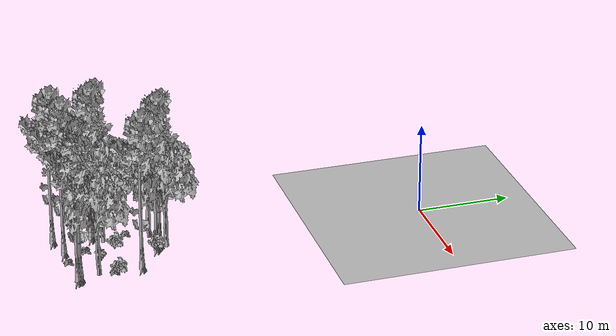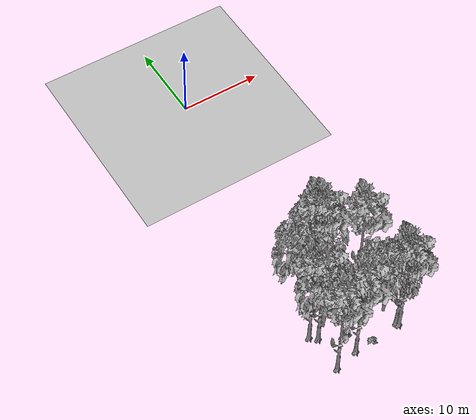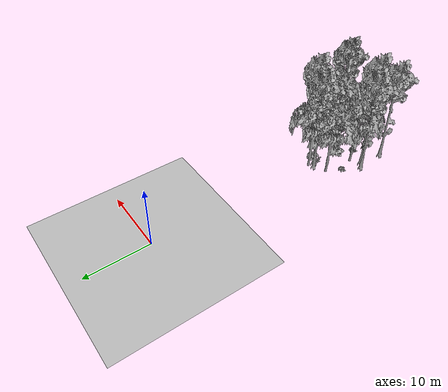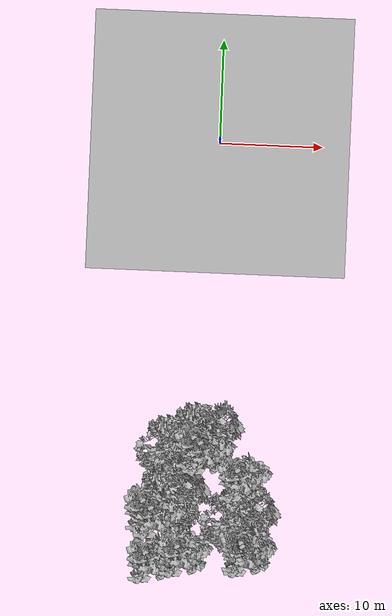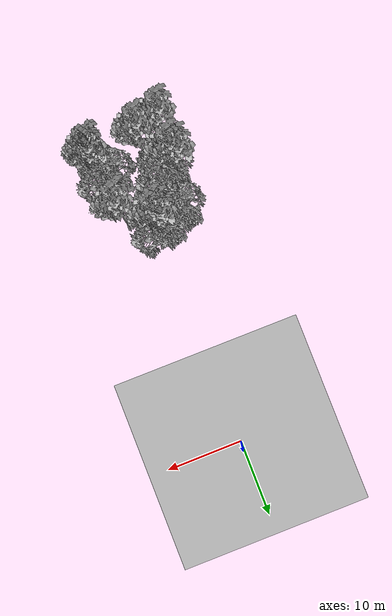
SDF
<sdf version="1.7">
 <world name="default">
  <model name="ground_plane">
   <static>1</static>
   <link name="link">
    <collision name="collision">
     <pose>-50 0 0 0 -0 0</pose>
     <geometry><plane><normal>0 0 1</normal><size>80 80</size></plane></geometry>
     <surface><contact><ode><min_depth>0.01</min_depth><max_vel>0</max_vel></ode></contact></surface>
    </collision>
    <visual name="grass">
     <cast_shadows>0</cast_shadows>
     <geometry>
      <mesh>
       <scale>0.46714285714285714 0.46714285714285714 0.1</scale>
       <uri>file://grass_plane/meshes/grass_plane.dae</uri>
      </mesh>
     </geometry>
    </visual>
   </link>
  </model>
  <model name="Tree 44">
   <static>1</static>
   <pose>-4.772963422962604 -38.736597356201614 0 1.57079 -0 0</pose>
   <link name="link">
    <collision name="collision">
     <geometry><mesh><scale>3.5 5 3.5</scale><uri>model://tree_9/meshes/tree_9.obj</uri></mesh></geometry>
    </collision>
    <visual name="visual">
     <geometry><mesh><scale>3.5 5 3.5</scale><uri>model://tree_9/meshes/tree_9.obj</uri></mesh></geometry>
    </visual>
   </link>
  </model>
  <model name="Tree 62">
   <static>1</static>
   <pose>-0.8476313191848774 -28.26942804555965 0 1.57079 -0 0</pose>
   <link name="link">
    <collision name="collision">
     <geometry><mesh><scale>3.5 5 3.5</scale><uri>model://tree_9/meshes/tree_9.obj</uri></mesh></geometry>
    </collision>
    <visual name="visual">
     <geometry><mesh><scale>3.5 5 3.5</scale><uri>model://tree_9/meshes/tree_9.obj</uri></mesh></geometry>
    </visual>
   </link>
  </model>
  <model name="Tree 96">
   <static>1</static>
   <pose>-1.9554758805430694 -38.091379323991816 0 1.57079 -0 0</pose>
   <link name="link">
    <collision name="collision">
     <geometry><mesh><scale>3.5 5 3.5</scale><uri>model://tree_9/meshes/tree_9.obj</uri></mesh></geometry>
    </collision>
    <visual name="visual">
     <geometry><mesh><scale>3.5 5 3.5</scale><uri>model://tree_9/meshes/tree_9.obj</uri></mesh></geometry>
    </visual>
   </link>
  </model>
  <model name="Tree 215">
   <static>1</static>
   <pose>-0.3521636685065914 -27.693443556598602 0 1.57079 -0 0</pose>
   <link name="link">
    <collision name="collision">
     <geometry><mesh><scale>3.5 5 3.5</scale><uri>model://tree_2/meshes/tree_2.obj</uri></mesh></geometry>
    </collision>
    <visual name="visual">
     <geometry><mesh><scale>3.5 5 3.5</scale><uri>model://tree_2/meshes/tree_2.obj</uri></mesh></geometry>
    </visual>
   </link>
  </model>
  <model name="Tree 253">
   <static>1</static>
   <pose>-4.458149948999932 -34.73825931731608 0 1.57079 -0 0</pose>
   <link name="link">
    <collision name="collision">
     <geometry><mesh><scale>3.5 5 3.5</scale><uri>model://tree_9/meshes/tree_9.obj</uri></mesh></geometry>
    </collision>
    <visual name="visual">
     <geometry><mesh><scale>3.5 5 3.5</scale><uri>model://tree_9/meshes/tree_9.obj</uri></mesh></geometry>
    </visual>
   </link>
  </model>
  <model name="Tree 272">
   <static>1</static>
   <pose>3.1922259605793357 -31.077012771134058 0 1.57079 -0 0</pose>
   <link name="link">
    <collision name="collision">
     <geometry><mesh><scale>3.5 5 3.5</scale><uri>model://tree_9/meshes/tree_9.obj</uri></mesh></geometry>
    </collision>
    <visual name="visual">
     <geometry><mesh><scale>3.5 5 3.5</scale><uri>model://tree_9/meshes/tree_9.obj</uri></mesh></geometry>
    </visual>
   </link>
  </model>
  <model name="Tree 316">
   <static>1</static>
   <pose>-2.8980222621096274 -28.948289363778905 0 1.57079 -0 0</pose>
   <link name="link">
    <collision name="collision">
     <geometry><mesh><scale>3.5 5 3.5</scale><uri>model://tree_2/meshes/tree_2.obj</uri></mesh></geometry>
    </collision>
    <visual name="visual">
     <geometry><mesh><scale>3.5 5 3.5</scale><uri>model://tree_2/meshes/tree_2.obj</uri></mesh></geometry>
    </visual>
   </link>
  </model>
  <model name="Tree 335">
   <static>1</static>
   <pose>3.374353226107374 -35.58121880385855 0 1.57079 -0 0</pose>
   <link name="link">
    <collision name="collision">
     <geometry><mesh><scale>3.5 5 3.5</scale><uri>model://tree_2/meshes/tree_2.obj</uri></mesh></geometry>
    </collision>
    <visual name="visual">
     <geometry><mesh><scale>3.5 5 3.5</scale><uri>model://tree_2/meshes/tree_2.obj</uri></mesh></geometry>
    </visual>
   </link>
  </model>
  <model name="Tree 342">
   <static>1</static>
   <pose>-0.2402337194348334 -28.743538428764943 0 1.57079 -0 0</pose>
   <link name="link">
    <collision name="collision">
     <geometry><mesh><scale>3.5 5 3.5</scale><uri>model://tree_9/meshes/tree_9.obj</uri></mesh></geometry>
    </collision>
    <visual name="visual">
     <geometry><mesh><scale>3.5 5 3.5</scale><uri>model://tree_9/meshes/tree_9.obj</uri></mesh></geometry>
    </visual>
   </link>
  </model>
  <model name="Tree 372">
   <static>1</static>
   <pose>-5.186914372528889 -34.09236948992682 0 1.57079 -0 0</pose>
   <link name="link">
    <collision name="collision">
     <geometry><mesh><scale>3.5 5 3.5</scale><uri>model://tree_9/meshes/tree_9.obj</uri></mesh></geometry>
    </collision>
    <visual name="visual">
     <geometry><mesh><scale>3.5 5 3.5</scale><uri>model://tree_9/meshes/tree_9.obj</uri></mesh></geometry>
    </visual>
   </link>
  </model>
  <model name="Tree 383">
   <static>1</static>
   <pose>-3.244000229568897 -33.752142597869025 0 1.57079 -0 0</pose>
   <link name="link">
    <collision name="collision">
     <geometry><mesh><scale>3.5 5 3.5</scale><uri>model://tree_2/meshes/tree_2.obj</uri></mesh></geometry>
    </collision>
    <visual name="visual">
     <geometry><mesh><scale>3.5 5 3.5</scale><uri>model://tree_2/meshes/tree_2.obj</uri></mesh></geometry>
    </visual>
   </link>
  </model>
  <model name="Tree 423">
   <static>1</static>
   <pose>3.8769606684919466 -37.84538817243067 0 1.57079 -0 0</pose>
   <link name="link">
    <collision name="collision">
     <geometry><mesh><scale>3.5 5 3.5</scale><uri>model://tree_9/meshes/tree_9.obj</uri></mesh></geometry>
    </collision>
    <visual name="visual">
     <geometry><mesh><scale>3.5 5 3.5</scale><uri>model://tree_9/meshes/tree_9.obj</uri></mesh></geometry>
    </visual>
   </link>
  </model>
  <model name="Tree 534">
   <static>1</static>
   <pose>3.7348005355685174 -37.52660534654092 0 1.57079 -0 0</pose>
   <link name="link">
    <collision name="collision">
     <geometry><mesh><scale>3.5 5 3.5</scale><uri>model://tree_9/meshes/tree_9.obj</uri></mesh></geometry>
    </collision>
    <visual name="visual">
     <geometry><mesh><scale>3.5 5 3.5</scale><uri>model://tree_9/meshes/tree_9.obj</uri></mesh></geometry>
    </visual>
   </link>
  </model>
  <model name="Bush 18">
   <static>1</static>
   <pose>3.944961482684768 -33.70527190269342 0 1.57079 -0 0</pose>
   <link name="link">
    <collision name="collision">
     <geometry><mesh><scale>2 2 2</scale><uri>model://bush_1/meshes/bush_1.obj</uri></mesh></geometry>
     <surface><contact><collide_without_contact>false</collide_without_contact></contact></surface>
    </collision>
    <visual name="visual">
     <geometry><mesh><scale>2 2 2</scale><uri>model://bush_1/meshes/bush_1.obj</uri></mesh></geometry>
    </visual>
   </link>
  </model>
  <model name="Bush 22">
   <static>1</static>
   <pose>-1.6343887799916175 -35.9119247758578 0 1.57079 -0 0</pose>
   <link name="link">
    <collision name="collision">
     <geometry><mesh><scale>2 2 2</scale><uri>model://bush_2/meshes/bush_2.obj</uri></mesh></geometry>
     <surface><contact><collide_without_contact>false</collide_without_contact></contact></surface>
    </collision>
    <visual name="visual">
     <geometry><mesh><scale>2 2 2</scale><uri>model://bush_2/meshes/bush_2.obj</uri></mesh></geometry>
    </visual>
   </link>
  </model>
  <model name="Bush 295">
   <static>1</static>
   <pose>-1.018102033541254 -28.512766474178086 0 1.57079 -0 0</pose>
   <link name="link">
    <collision name="collision">
     <geometry><mesh><scale>2 2 2</scale><uri>model://bush_5/meshes/bush_5.obj</uri></mesh></geometry>
     <surface><contact><collide_without_contact>false</collide_without_contact></contact></surface>
    </collision>
    <visual name="visual">
     <geometry><mesh><scale>2 2 2</scale><uri>model://bush_5/meshes/bush_5.obj</uri></mesh></geometry>
    </visual>
   </link>
  </model>
  <model name="Bush 375">
   <static>1</static>
   <pose>-1.3458685438573283 -32.9345987975399 0 1.57079 -0 0</pose>
   <link name="link">
    <collision name="collision">
     <geometry><mesh><scale>2 2 2</scale><uri>model://bush_1/meshes/bush_1.obj</uri></mesh></geometry>
     <surface><contact><collide_without_contact>false</collide_without_contact></contact></surface>
    </collision>
    <visual name="visual">
     <geometry><mesh><scale>2 2 2</scale><uri>model://bush_1/meshes/bush_1.obj</uri></mesh></geometry>
    </visual>
   </link>
  </model>
  <model name="Bush 411">
   <static>1</static>
   <pose>0.18697249106289604 -38.09593753907855 0 1.57079 -0 0</pose>
   <link name="link">
    <collision name="collision">
     <geometry><mesh><scale>2 2 2</scale><uri>model://bush_2/meshes/bush_2.obj</uri></mesh></geometry>
     <surface><contact><collide_without_contact>false</collide_without_contact></contact></surface>
    </collision>
    <visual name="visual">
     <geometry><mesh><scale>2 2 2</scale><uri>model://bush_2/meshes/bush_2.obj</uri></mesh></geometry>
    </visual>
   </link>
  </model>
  <model name="Bush 465">
   <static>1</static>
   <pose>0.71334758125451 -34.735356213052484 0 1.57079 -0 0</pose>
   <link name="link">
    <collision name="collision">
     <geometry><mesh><scale>2 2 2</scale><uri>model://bush_0/meshes/bush_0.obj</uri></mesh></geometry>
     <surface><contact><collide_without_contact>false</collide_without_contact></contact></surface>
    </collision>
    <visual name="visual">
     <geometry><mesh><scale>2 2 2</scale><uri>model://bush_0/meshes/bush_0.obj</uri></mesh></geometry>
    </visual>
   </link>
  </model>
  <model name="Bush 476">
   <static>1</static>
   <pose>0.16078335362070106 -28.930261896250613 0 1.57079 -0 0</pose>
   <link name="link">
    <collision name="collision">
     <geometry><mesh><scale>2 2 2</scale><uri>model://bush_1/meshes/bush_1.obj</uri></mesh></geometry>
     <surface><contact><collide_without_contact>false</collide_without_contact></contact></surface>
    </collision>
    <visual name="visual">
     <geometry><mesh><scale>2 2 2</scale><uri>model://bush_1/meshes/bush_1.obj</uri></mesh></geometry>
    </visual>
   </link>
  </model>
  <model name="Bush 526">
   <static>1</static>
   <pose>3.469887789696706 -34.01934121529066 0 1.57079 -0 0</pose>
   <link name="link">
    <collision name="collision">
     <geometry><mesh><scale>2 2 2</scale><uri>model://bush_2/meshes/bush_2.obj</uri></mesh></geometry>
     <surface><contact><collide_without_contact>false</collide_without_contact></contact></surface>
    </collision>
    <visual name="visual">
     <geometry><mesh><scale>2 2 2</scale><uri>model://bush_2/meshes/bush_2.obj</uri></mesh></geometry>
    </visual>
   </link>
  </model>
  <model name="Bush 549">
   <static>1</static>
   <pose>-4.0002866960325605 -31.251367004448582 0 1.57079 -0 0</pose>
   <link name="link">
    <collision name="collision">
     <geometry><mesh><scale>2 2 2</scale><uri>model://bush_2/meshes/bush_2.obj</uri></mesh></geometry>
     <surface><contact><collide_without_contact>false</collide_without_contact></contact></surface>
    </collision>
    <visual name="visual">
     <geometry><mesh><scale>2 2 2</scale><uri>model://bush_2/meshes/bush_2.obj</uri></mesh></geometry>
    </visual>
   </link>
  </model>
  <model name="Bush 628">
   <static>1</static>
   <pose>-1.7758410493486352 -35.96820802367751 0 1.57079 -0 0</pose>
   <link name="link">
    <collision name="collision">
     <geometry><mesh><scale>2 2 2</scale><uri>model://bush_2/meshes/bush_2.obj</uri></mesh></geometry>
     <surface><contact><collide_without_contact>false</collide_without_contact></contact></surface>
    </collision>
    <visual name="visual">
     <geometry><mesh><scale>2 2 2</scale><uri>model://bush_2/meshes/bush_2.obj</uri></mesh></geometry>
    </visual>
   </link>
  </model>
 </world>
</sdf>
